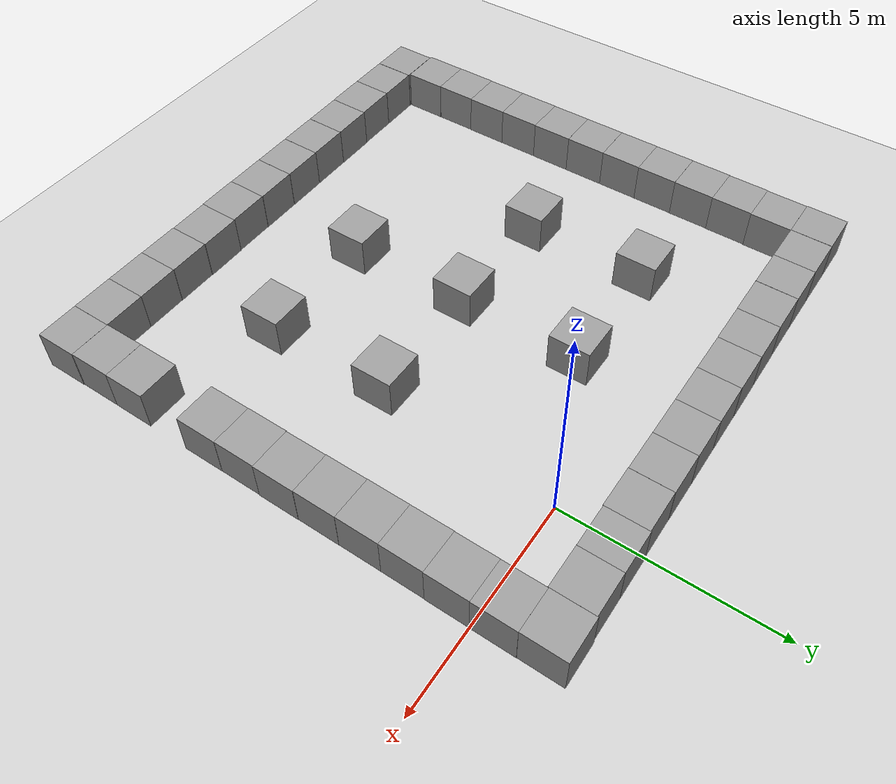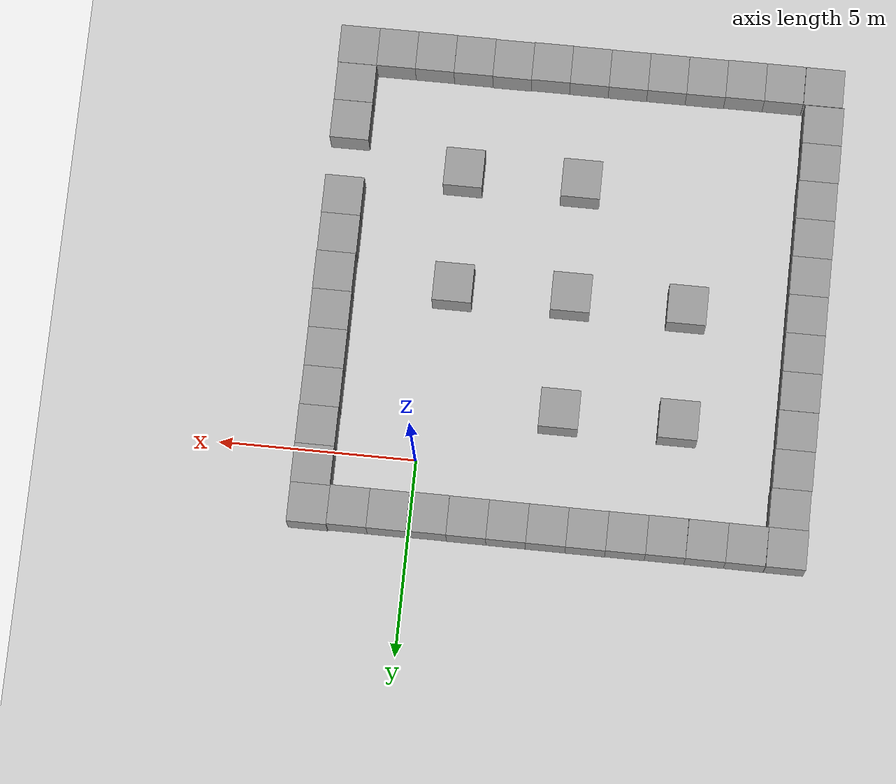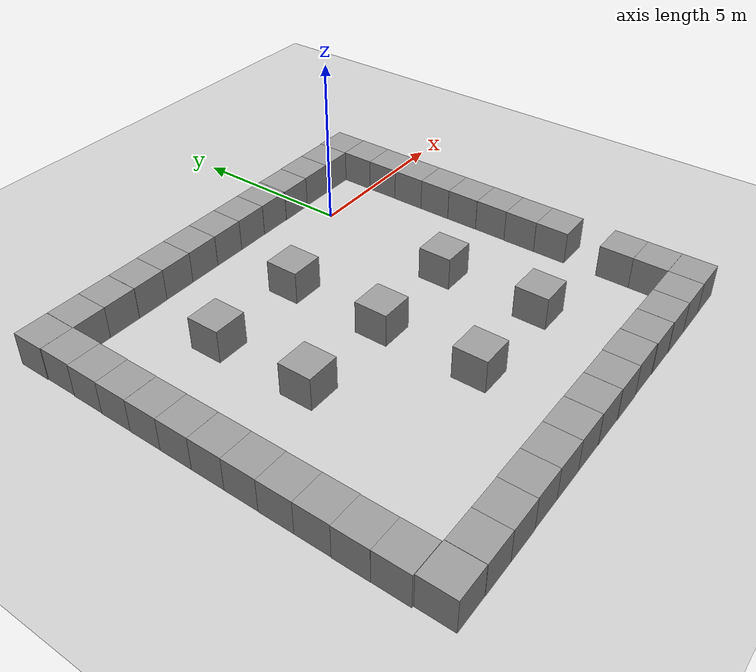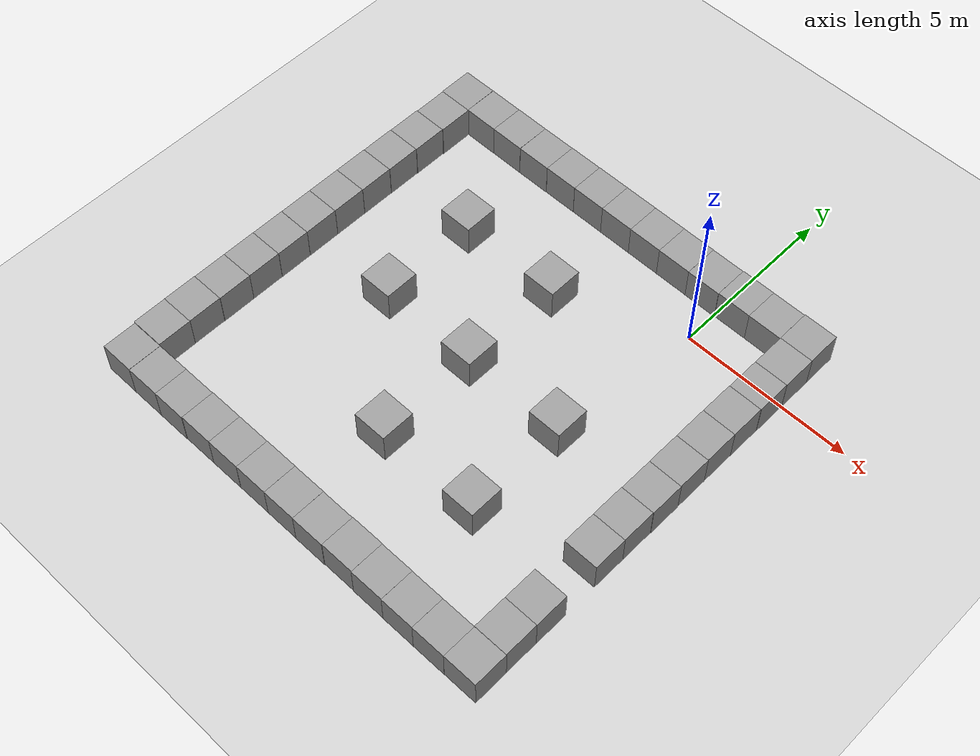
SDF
<sdf version="1.6">
 <world name="default">
  <light name="sun" type="directional">
   <pose>0 0 10 0 -0 0</pose>
   <diffuse>0.8 0.8 0.8 1</diffuse>
   <specular>0.1 0.1 0.1 1</specular>
   <attenuation>
    <range>1000</range>
    <constant>0.9</constant>
    <linear>0.01</linear>
    <quadratic>0.001</quadratic>
   </attenuation>
   <direction>-0.5 0.5 -1</direction>
  </light>
  <model name="ground_plane">
   <static>1</static>
   <link name="link">
    <collision name="collision">
     <geometry><plane><normal>0 0 1</normal><size>100 100</size></plane></geometry>
     <surface><friction><ode><mu>100</mu><mu2>50</mu2></ode></friction></surface>
    </collision>
    <visual name="visual">
     <cast_shadows>0</cast_shadows>
     <geometry><plane><normal>0 0 1</normal><size>100 100</size></plane></geometry>
     <material>
      <script><uri>file://media/materials/scripts/gazebo.material</uri><name>Gazebo/Grey</name></script>
     </material>
    </visual>
   </link>
  </model>
  <gravity>0 0 -9.8</gravity>
  <magnetic_field>6e-06 2.3e-05 -4.2e-05</magnetic_field>
  <atmosphere type="adiabatic"/>
  <physics name="default_physics" default="0" type="ode">
   <max_step_size>0.001</max_step_size>
   <real_time_factor>1</real_time_factor>
   <real_time_update_rate>1000</real_time_update_rate>
  </physics>
  <scene><ambient>0.4 0.4 0.4 1</ambient><background>0.7 0.7 0.7 1</background><shadows>1</shadows></scene>
  <spherical_coordinates>
   <surface_model>EARTH_WGS84</surface_model>
   <latitude_deg>0</latitude_deg>
   <longitude_deg>0</longitude_deg>
   <elevation>0</elevation>
   <heading_deg>0</heading_deg>
  </spherical_coordinates>
  <model name="unit_box_0_3">
   <pose>-0.485011 1.46415 0.5 0 0 -0.000431</pose>
   <link name="link">
    <inertial>
     <mass>1</mass>
     <inertia>
      <ixx>0.166667</ixx>
      <ixy>0</ixy>
      <ixz>0</ixz>
      <iyy>0.166667</iyy>
      <iyz>0</iyz>
      <izz>0.166667</izz>
     </inertia>
    </inertial>
    <collision name="collision"><geometry><box><size>1 1 1</size></box></geometry></collision>
    <visual name="visual">
     <geometry><box><size>1 1 1</size></box></geometry>
     <material>
      <script><name>Gazebo/Grey</name><uri>file://media/materials/scripts/gazebo.material</uri></script>
     </material>
    </visual>
   </link>
  </model>
  <model name="unit_box_0_4">
   <pose>0.515009 1.47742 0.5 0 0 -0.000418</pose>
   <link name="link">
    <inertial>
     <mass>1</mass>
     <inertia>
      <ixx>0.166667</ixx>
      <ixy>0</ixy>
      <ixz>0</ixz>
      <iyy>0.166667</iyy>
      <iyz>0</iyz>
      <izz>0.166667</izz>
     </inertia>
    </inertial>
    <collision name="collision"><geometry><box><size>1 1 1</size></box></geometry></collision>
    <visual name="visual">
     <geometry><box><size>1 1 1</size></box></geometry>
     <material>
      <script><name>Gazebo/Grey</name><uri>file://media/materials/scripts/gazebo.material</uri></script>
     </material>
    </visual>
   </link>
  </model>
  <model name="unit_box_0_5">
   <pose>1.51501 1.4753 0.5 0 0 -0.000419</pose>
   <link name="link">
    <inertial>
     <mass>1</mass>
     <inertia>
      <ixx>0.166667</ixx>
      <ixy>0</ixy>
      <ixz>0</ixz>
      <iyy>0.166667</iyy>
      <iyz>0</iyz>
      <izz>0.166667</izz>
     </inertia>
    </inertial>
    <collision name="collision"><geometry><box><size>1 1 1</size></box></geometry></collision>
    <visual name="visual">
     <geometry><box><size>1 1 1</size></box></geometry>
     <material>
      <script><name>Gazebo/Grey</name><uri>file://media/materials/scripts/gazebo.material</uri></script>
     </material>
    </visual>
   </link>
  </model>
  <model name="unit_box_0_6">
   <pose>-1.48541 1.46962 0.5 0 0 -0.001227</pose>
   <link name="link">
    <inertial>
     <mass>1</mass>
     <inertia>
      <ixx>0.166667</ixx>
      <ixy>0</ixy>
      <ixz>0</ixz>
      <iyy>0.166667</iyy>
      <iyz>0</iyz>
      <izz>0.166667</izz>
     </inertia>
    </inertial>
    <collision name="collision"><geometry><box><size>1 1 1</size></box></geometry></collision>
    <visual name="visual">
     <geometry><box><size>1 1 1</size></box></geometry>
     <material>
      <script><name>Gazebo/Grey</name><uri>file://media/materials/scripts/gazebo.material</uri></script>
     </material>
    </visual>
   </link>
  </model>
  <model name="unit_box_0_7">
   <pose>-2.48543 1.47308 0.5 0 0 -0.001272</pose>
   <link name="link">
    <inertial>
     <mass>1</mass>
     <inertia>
      <ixx>0.166667</ixx>
      <ixy>0</ixy>
      <ixz>0</ixz>
      <iyy>0.166667</iyy>
      <iyz>0</iyz>
      <izz>0.166667</izz>
     </inertia>
    </inertial>
    <collision name="collision"><geometry><box><size>1 1 1</size></box></geometry></collision>
    <visual name="visual">
     <geometry><box><size>1 1 1</size></box></geometry>
     <material>
      <script><name>Gazebo/Grey</name><uri>file://media/materials/scripts/gazebo.material</uri></script>
     </material>
    </visual>
   </link>
  </model>
  <model name="unit_box_0_8">
   <pose>2.51506 1.4973 0.5 0 0 -0.000355</pose>
   <link name="link">
    <inertial>
     <mass>1</mass>
     <inertia>
      <ixx>0.166667</ixx>
      <ixy>0</ixy>
      <ixz>0</ixz>
      <iyy>0.166667</iyy>
      <iyz>0</iyz>
      <izz>0.166667</izz>
     </inertia>
    </inertial>
    <collision name="collision"><geometry><box><size>1 1 1</size></box></geometry></collision>
    <visual name="visual">
     <geometry><box><size>1 1 1</size></box></geometry>
     <material>
      <script><name>Gazebo/Grey</name><uri>file://media/materials/scripts/gazebo.material</uri></script>
     </material>
    </visual>
   </link>
  </model>
  <model name="unit_box_0_9">
   <pose>-3.48544 1.47527 0.499995 -1e-05 -0 -0.001286</pose>
   <link name="link">
    <inertial>
     <mass>1</mass>
     <inertia>
      <ixx>0.166667</ixx>
      <ixy>0</ixy>
      <ixz>0</ixz>
      <iyy>0.166667</iyy>
      <iyz>0</iyz>
      <izz>0.166667</izz>
     </inertia>
    </inertial>
    <collision name="collision"><geometry><box><size>1 1 1</size></box></geometry></collision>
    <visual name="visual">
     <geometry><box><size>1 1 1</size></box></geometry>
     <material>
      <script><name>Gazebo/Grey</name><uri>file://media/materials/scripts/gazebo.material</uri></script>
     </material>
    </visual>
   </link>
  </model>
  <model name="unit_box_0_10">
   <pose>-4.48545 1.47865 0.5 0 0 -0.00131</pose>
   <link name="link">
    <inertial>
     <mass>1</mass>
     <inertia>
      <ixx>0.166667</ixx>
      <ixy>0</ixy>
      <ixz>0</ixz>
      <iyy>0.166667</iyy>
      <iyz>0</iyz>
      <izz>0.166667</izz>
     </inertia>
    </inertial>
    <collision name="collision"><geometry><box><size>1 1 1</size></box></geometry></collision>
    <visual name="visual">
     <geometry><box><size>1 1 1</size></box></geometry>
     <material>
      <script><name>Gazebo/Grey</name><uri>file://media/materials/scripts/gazebo.material</uri></script>
     </material>
    </visual>
   </link>
  </model>
  <model name="unit_box_0_11">
   <pose>-5.48546 1.4761 0.499995 -1e-05 -0 -0.001312</pose>
   <link name="link">
    <inertial>
     <mass>1</mass>
     <inertia>
      <ixx>0.166667</ixx>
      <ixy>0</ixy>
      <ixz>0</ixz>
      <iyy>0.166667</iyy>
      <iyz>0</iyz>
      <izz>0.166667</izz>
     </inertia>
    </inertial>
    <collision name="collision"><geometry><box><size>1 1 1</size></box></geometry></collision>
    <visual name="visual">
     <geometry><box><size>1 1 1</size></box></geometry>
     <material>
      <script><name>Gazebo/Grey</name><uri>file://media/materials/scripts/gazebo.material</uri></script>
     </material>
    </visual>
   </link>
  </model>
  <model name="unit_box_0_28">
   <pose>2.51082 -6.50287 0.5 0 0 -8.4e-05</pose>
   <link name="link">
    <inertial>
     <mass>1</mass>
     <inertia>
      <ixx>0.166667</ixx>
      <ixy>0</ixy>
      <ixz>0</ixz>
      <iyy>0.166667</iyy>
      <iyz>0</iyz>
      <izz>0.166667</izz>
     </inertia>
    </inertial>
    <collision name="collision"><geometry><box><size>1 1 1</size></box></geometry></collision>
    <visual name="visual">
     <geometry><box><size>1 1 1</size></box></geometry>
     <material>
      <script><name>Gazebo/Grey</name><uri>file://media/materials/scripts/gazebo.material</uri></script>
     </material>
    </visual>
   </link>
  </model>
  <model name="unit_box_0_29">
   <pose>2.50829 -5.50284 0.5 0 0 -0.000151</pose>
   <link name="link">
    <inertial>
     <mass>1</mass>
     <inertia>
      <ixx>0.166667</ixx>
      <ixy>0</ixy>
      <ixz>0</ixz>
      <iyy>0.166667</iyy>
      <iyz>0</iyz>
      <izz>0.166667</izz>
     </inertia>
    </inertial>
    <collision name="collision"><geometry><box><size>1 1 1</size></box></geometry></collision>
    <visual name="visual">
     <geometry><box><size>1 1 1</size></box></geometry>
     <material>
      <script><name>Gazebo/Grey</name><uri>file://media/materials/scripts/gazebo.material</uri></script>
     </material>
    </visual>
   </link>
  </model>
  <model name="unit_box_0_30">
   <pose>2.51749 -4.50282 0.5 0 0 -0.000178</pose>
   <link name="link">
    <inertial>
     <mass>1</mass>
     <inertia>
      <ixx>0.166667</ixx>
      <ixy>0</ixy>
      <ixz>0</ixz>
      <iyy>0.166667</iyy>
      <iyz>0</iyz>
      <izz>0.166667</izz>
     </inertia>
    </inertial>
    <collision name="collision"><geometry><box><size>1 1 1</size></box></geometry></collision>
    <visual name="visual">
     <geometry><box><size>1 1 1</size></box></geometry>
     <material>
      <script><name>Gazebo/Grey</name><uri>file://media/materials/scripts/gazebo.material</uri></script>
     </material>
    </visual>
   </link>
  </model>
  <model name="unit_box_0_31">
   <pose>2.51174 -3.50282 0.5 0 0 -0.000178</pose>
   <link name="link">
    <inertial>
     <mass>1</mass>
     <inertia>
      <ixx>0.166667</ixx>
      <ixy>0</ixy>
      <ixz>0</ixz>
      <iyy>0.166667</iyy>
      <iyz>0</iyz>
      <izz>0.166667</izz>
     </inertia>
    </inertial>
    <collision name="collision"><geometry><box><size>1 1 1</size></box></geometry></collision>
    <visual name="visual">
     <geometry><box><size>1 1 1</size></box></geometry>
     <material>
      <script><name>Gazebo/Grey</name><uri>file://media/materials/scripts/gazebo.material</uri></script>
     </material>
    </visual>
   </link>
  </model>
  <model name="unit_box_0_32">
   <pose>2.50817 -2.50281 0.5 0 0 -0.000178</pose>
   <link name="link">
    <inertial>
     <mass>1</mass>
     <inertia>
      <ixx>0.166667</ixx>
      <ixy>0</ixy>
      <ixz>0</ixz>
      <iyy>0.166667</iyy>
      <iyz>0</iyz>
      <izz>0.166667</izz>
     </inertia>
    </inertial>
    <collision name="collision"><geometry><box><size>1 1 1</size></box></geometry></collision>
    <visual name="visual">
     <geometry><box><size>1 1 1</size></box></geometry>
     <material>
      <script><name>Gazebo/Grey</name><uri>file://media/materials/scripts/gazebo.material</uri></script>
     </material>
    </visual>
   </link>
  </model>
  <model name="unit_box_0_34">
   <pose>2.50944 -1.5028 0.499995 -0 -1e-05 -0.000177</pose>
   <link name="link">
    <inertial>
     <mass>1</mass>
     <inertia>
      <ixx>0.166667</ixx>
      <ixy>0</ixy>
      <ixz>0</ixz>
      <iyy>0.166667</iyy>
      <iyz>0</iyz>
      <izz>0.166667</izz>
     </inertia>
    </inertial>
    <collision name="collision"><geometry><box><size>1 1 1</size></box></geometry></collision>
    <visual name="visual">
     <geometry><box><size>1 1 1</size></box></geometry>
     <material>
      <script><name>Gazebo/Grey</name><uri>file://media/materials/scripts/gazebo.material</uri></script>
     </material>
    </visual>
   </link>
  </model>
  <model name="unit_box_0_35">
   <pose>2.51729 -0.5028 0.5 0 0 -0.000177</pose>
   <link name="link">
    <inertial>
     <mass>1</mass>
     <inertia>
      <ixx>0.166667</ixx>
      <ixy>0</ixy>
      <ixz>0</ixz>
      <iyy>0.166667</iyy>
      <iyz>0</iyz>
      <izz>0.166667</izz>
     </inertia>
    </inertial>
    <collision name="collision"><geometry><box><size>1 1 1</size></box></geometry></collision>
    <visual name="visual">
     <geometry><box><size>1 1 1</size></box></geometry>
     <material>
      <script><name>Gazebo/Grey</name><uri>file://media/materials/scripts/gazebo.material</uri></script>
     </material>
    </visual>
   </link>
  </model>
  <model name="unit_box_0_36">
   <pose>2.52058 0.497211 0.5 0 0 -0.000195</pose>
   <link name="link">
    <inertial>
     <mass>1</mass>
     <inertia>
      <ixx>0.166667</ixx>
      <ixy>0</ixy>
      <ixz>0</ixz>
      <iyy>0.166667</iyy>
      <iyz>0</iyz>
      <izz>0.166667</izz>
     </inertia>
    </inertial>
    <collision name="collision"><geometry><box><size>1 1 1</size></box></geometry></collision>
    <visual name="visual">
     <geometry><box><size>1 1 1</size></box></geometry>
     <material>
      <script><name>Gazebo/Grey</name><uri>file://media/materials/scripts/gazebo.material</uri></script>
     </material>
    </visual>
   </link>
  </model>
  <model name="unit_box_1">
   <pose>-0.520415 -4.49984 0.5 0 -0 0</pose>
   <link name="link">
    <inertial>
     <mass>1</mass>
     <inertia>
      <ixx>0.166667</ixx>
      <ixy>0</ixy>
      <ixz>0</ixz>
      <iyy>0.166667</iyy>
      <iyz>0</iyz>
      <izz>0.166667</izz>
     </inertia>
    </inertial>
    <collision name="collision"><geometry><box><size>1 1 1</size></box></geometry></collision>
    <visual name="visual">
     <geometry><box><size>1 1 1</size></box></geometry>
     <material>
      <script><name>Gazebo/Grey</name><uri>file://media/materials/scripts/gazebo.material</uri></script>
     </material>
    </visual>
   </link>
  </model>
  <model name="unit_box_2">
   <pose>-0.495693 -7.52249 0.5 0 -0 0.000151</pose>
   <link name="link">
    <inertial>
     <mass>1</mass>
     <inertia>
      <ixx>0.166667</ixx>
      <ixy>0</ixy>
      <ixz>0</ixz>
      <iyy>0.166667</iyy>
      <iyz>0</iyz>
      <izz>0.166667</izz>
     </inertia>
    </inertial>
    <collision name="collision"><geometry><box><size>1 1 1</size></box></geometry></collision>
    <visual name="visual">
     <geometry><box><size>1 1 1</size></box></geometry>
     <material>
      <script><name>Gazebo/Grey</name><uri>file://media/materials/scripts/gazebo.material</uri></script>
     </material>
    </visual>
   </link>
  </model>
  <model name="unit_box_4">
   <pose>-1.47392 -10.5015 0.5 0 -0 0.003189</pose>
   <link name="link">
    <inertial>
     <mass>1</mass>
     <inertia>
      <ixx>0.166667</ixx>
      <ixy>0</ixy>
      <ixz>0</ixz>
      <iyy>0.166667</iyy>
      <iyz>0</iyz>
      <izz>0.166667</izz>
     </inertia>
    </inertial>
    <collision name="collision"><geometry><box><size>1 1 1</size></box></geometry></collision>
    <visual name="visual">
     <geometry><box><size>1 1 1</size></box></geometry>
     <material>
      <script><name>Gazebo/Grey</name><uri>file://media/materials/scripts/gazebo.material</uri></script>
     </material>
    </visual>
   </link>
  </model>
  <model name="unit_box_5_0">
   <pose>-0.473783 -10.5096 0.5 0 -0 0.003101</pose>
   <link name="link">
    <inertial>
     <mass>1</mass>
     <inertia>
      <ixx>0.166667</ixx>
      <ixy>0</ixy>
      <ixz>0</ixz>
      <iyy>0.166667</iyy>
      <iyz>0</iyz>
      <izz>0.166667</izz>
     </inertia>
    </inertial>
    <collision name="collision"><geometry><box><size>1 1 1</size></box></geometry></collision>
    <visual name="visual">
     <geometry><box><size>1 1 1</size></box></geometry>
     <material>
      <script><name>Gazebo/Grey</name><uri>file://media/materials/scripts/gazebo.material</uri></script>
     </material>
    </visual>
   </link>
  </model>
  <model name="unit_box_5_1">
   <pose>0.526456 -10.5137 0.5 0 -0 0.003181</pose>
   <link name="link">
    <inertial>
     <mass>1</mass>
     <inertia>
      <ixx>0.166667</ixx>
      <ixy>0</ixy>
      <ixz>0</ixz>
      <iyy>0.166667</iyy>
      <iyz>0</iyz>
      <izz>0.166667</izz>
     </inertia>
    </inertial>
    <collision name="collision"><geometry><box><size>1 1 1</size></box></geometry></collision>
    <visual name="visual">
     <geometry><box><size>1 1 1</size></box></geometry>
     <material>
      <script><name>Gazebo/Grey</name><uri>file://media/materials/scripts/gazebo.material</uri></script>
     </material>
    </visual>
   </link>
  </model>
  <model name="unit_box_5_2">
   <pose>1.52651 -10.5118 0.5 0 -0 0.003169</pose>
   <link name="link">
    <inertial>
     <mass>1</mass>
     <inertia>
      <ixx>0.166667</ixx>
      <ixy>0</ixy>
      <ixz>0</ixz>
      <iyy>0.166667</iyy>
      <iyz>0</iyz>
      <izz>0.166667</izz>
     </inertia>
    </inertial>
    <collision name="collision"><geometry><box><size>1 1 1</size></box></geometry></collision>
    <visual name="visual">
     <geometry><box><size>1 1 1</size></box></geometry>
     <material>
      <script><name>Gazebo/Grey</name><uri>file://media/materials/scripts/gazebo.material</uri></script>
     </material>
    </visual>
   </link>
  </model>
  <model name="unit_box_5_3">
   <pose>2.51399 -8.50357 0.5 0 -0 0.001292</pose>
   <link name="link">
    <inertial>
     <mass>1</mass>
     <inertia>
      <ixx>0.166667</ixx>
      <ixy>0</ixy>
      <ixz>0</ixz>
      <iyy>0.166667</iyy>
      <iyz>0</iyz>
      <izz>0.166667</izz>
     </inertia>
    </inertial>
    <collision name="collision"><geometry><box><size>1 1 1</size></box></geometry></collision>
    <visual name="visual">
     <geometry><box><size>1 1 1</size></box></geometry>
     <material>
      <script><name>Gazebo/Grey</name><uri>file://media/materials/scripts/gazebo.material</uri></script>
     </material>
    </visual>
   </link>
  </model>
  <model name="unit_box_5_4">
   <pose>-2.47388 -10.5161 0.5 0 -0 0.003189</pose>
   <link name="link">
    <inertial>
     <mass>1</mass>
     <inertia>
      <ixx>0.166667</ixx>
      <ixy>0</ixy>
      <ixz>0</ixz>
      <iyy>0.166667</iyy>
      <iyz>0</iyz>
      <izz>0.166667</izz>
     </inertia>
    </inertial>
    <collision name="collision"><geometry><box><size>1 1 1</size></box></geometry></collision>
    <visual name="visual">
     <geometry><box><size>1 1 1</size></box></geometry>
     <material>
      <script><name>Gazebo/Grey</name><uri>file://media/materials/scripts/gazebo.material</uri></script>
     </material>
    </visual>
   </link>
  </model>
  <model name="unit_box_5_5">
   <pose>2.51461 -9.50427 0.5 0 -0 0.002692</pose>
   <link name="link">
    <inertial>
     <mass>1</mass>
     <inertia>
      <ixx>0.166667</ixx>
      <ixy>0</ixy>
      <ixz>0</ixz>
      <iyy>0.166667</iyy>
      <iyz>0</iyz>
      <izz>0.166667</izz>
     </inertia>
    </inertial>
    <collision name="collision"><geometry><box><size>1 1 1</size></box></geometry></collision>
    <visual name="visual">
     <geometry><box><size>1 1 1</size></box></geometry>
     <material>
      <script><name>Gazebo/Grey</name><uri>file://media/materials/scripts/gazebo.material</uri></script>
     </material>
    </visual>
   </link>
  </model>
  <model name="unit_box_5_6">
   <pose>2.52663 -10.5055 0.5 0 -0 0.003363</pose>
   <link name="link">
    <inertial>
     <mass>1</mass>
     <inertia>
      <ixx>0.166667</ixx>
      <ixy>0</ixy>
      <ixz>0</ixz>
      <iyy>0.166667</iyy>
      <iyz>0</iyz>
      <izz>0.166667</izz>
     </inertia>
    </inertial>
    <collision name="collision"><geometry><box><size>1 1 1</size></box></geometry></collision>
    <visual name="visual">
     <geometry><box><size>1 1 1</size></box></geometry>
     <material>
      <script><name>Gazebo/Grey</name><uri>file://media/materials/scripts/gazebo.material</uri></script>
     </material>
    </visual>
   </link>
  </model>
  <model name="unit_box_5_7">
   <pose>-6.48558 1.47192 0.5 0 0 -0.001453</pose>
   <link name="link">
    <inertial>
     <mass>1</mass>
     <inertia>
      <ixx>0.166667</ixx>
      <ixy>0</ixy>
      <ixz>0</ixz>
      <iyy>0.166667</iyy>
      <iyz>0</iyz>
      <izz>0.166667</izz>
     </inertia>
    </inertial>
    <collision name="collision"><geometry><box><size>1 1 1</size></box></geometry></collision>
    <visual name="visual">
     <geometry><box><size>1 1 1</size></box></geometry>
     <material>
      <script><name>Gazebo/Grey</name><uri>file://media/materials/scripts/gazebo.material</uri></script>
     </material>
    </visual>
   </link>
  </model>
  <model name="unit_box_5_8">
   <pose>-7.48807 1.47601 0.5 0 0 -0.006394</pose>
   <link name="link">
    <inertial>
     <mass>1</mass>
     <inertia>
      <ixx>0.166667</ixx>
      <ixy>0</ixy>
      <ixz>0</ixz>
      <iyy>0.166667</iyy>
      <iyz>0</iyz>
      <izz>0.166667</izz>
     </inertia>
    </inertial>
    <collision name="collision"><geometry><box><size>1 1 1</size></box></geometry></collision>
    <visual name="visual">
     <geometry><box><size>1 1 1</size></box></geometry>
     <material>
      <script><name>Gazebo/Grey</name><uri>file://media/materials/scripts/gazebo.material</uri></script>
     </material>
    </visual>
   </link>
  </model>
  <model name="unit_box_5_9">
   <pose>-8.48807 1.48039 0.5 0 0 -0.006392</pose>
   <link name="link">
    <inertial>
     <mass>1</mass>
     <inertia>
      <ixx>0.166667</ixx>
      <ixy>0</ixy>
      <ixz>0</ixz>
      <iyy>0.166667</iyy>
      <iyz>0</iyz>
      <izz>0.166667</izz>
     </inertia>
    </inertial>
    <collision name="collision"><geometry><box><size>1 1 1</size></box></geometry></collision>
    <visual name="visual">
     <geometry><box><size>1 1 1</size></box></geometry>
     <material>
      <script><name>Gazebo/Grey</name><uri>file://media/materials/scripts/gazebo.material</uri></script>
     </material>
    </visual>
   </link>
  </model>
  <model name="unit_box_5_10">
   <pose>-9.49113 1.48362 0.5 0 0 -0.00029</pose>
   <link name="link">
    <inertial>
     <mass>1</mass>
     <inertia>
      <ixx>0.166667</ixx>
      <ixy>0</ixy>
      <ixz>0</ixz>
      <iyy>0.166667</iyy>
      <iyz>0</iyz>
      <izz>0.166667</izz>
     </inertia>
    </inertial>
    <collision name="collision"><geometry><box><size>1 1 1</size></box></geometry></collision>
    <visual name="visual">
     <geometry><box><size>1 1 1</size></box></geometry>
     <material>
      <script><name>Gazebo/Grey</name><uri>file://media/materials/scripts/gazebo.material</uri></script>
     </material>
    </visual>
   </link>
  </model>
  <model name="unit_box_5_11">
   <pose>-3.47406 -10.5125 0.5 0 -0 0.0031</pose>
   <link name="link">
    <inertial>
     <mass>1</mass>
     <inertia>
      <ixx>0.166667</ixx>
      <ixy>0</ixy>
      <ixz>0</ixz>
      <iyy>0.166667</iyy>
      <iyz>0</iyz>
      <izz>0.166667</izz>
     </inertia>
    </inertial>
    <collision name="collision"><geometry><box><size>1 1 1</size></box></geometry></collision>
    <visual name="visual">
     <geometry><box><size>1 1 1</size></box></geometry>
     <material>
      <script><name>Gazebo/Grey</name><uri>file://media/materials/scripts/gazebo.material</uri></script>
     </material>
    </visual>
   </link>
  </model>
  <model name="unit_box_5_12">
   <pose>-4.47461 -10.5113 0.5 0 -0 0.002137</pose>
   <link name="link">
    <inertial>
     <mass>1</mass>
     <inertia>
      <ixx>0.166667</ixx>
      <ixy>0</ixy>
      <ixz>0</ixz>
      <iyy>0.166667</iyy>
      <iyz>0</iyz>
      <izz>0.166667</izz>
     </inertia>
    </inertial>
    <collision name="collision"><geometry><box><size>1 1 1</size></box></geometry></collision>
    <visual name="visual">
     <geometry><box><size>1 1 1</size></box></geometry>
     <material>
      <script><name>Gazebo/Grey</name><uri>file://media/materials/scripts/gazebo.material</uri></script>
     </material>
    </visual>
   </link>
  </model>
  <model name="unit_box_5_13">
   <pose>-5.4749 -10.5159 0.5 0 -0 0.001541</pose>
   <link name="link">
    <inertial>
     <mass>1</mass>
     <inertia>
      <ixx>0.166667</ixx>
      <ixy>0</ixy>
      <ixz>0</ixz>
      <iyy>0.166667</iyy>
      <iyz>0</iyz>
      <izz>0.166667</izz>
     </inertia>
    </inertial>
    <collision name="collision"><geometry><box><size>1 1 1</size></box></geometry></collision>
    <visual name="visual">
     <geometry><box><size>1 1 1</size></box></geometry>
     <material>
      <script><name>Gazebo/Grey</name><uri>file://media/materials/scripts/gazebo.material</uri></script>
     </material>
    </visual>
   </link>
  </model>
  <model name="unit_box_5_14">
   <pose>-6.47495 -10.5167 0.5 0 -0 0.00147</pose>
   <link name="link">
    <inertial>
     <mass>1</mass>
     <inertia>
      <ixx>0.166667</ixx>
      <ixy>0</ixy>
      <ixz>0</ixz>
      <iyy>0.166667</iyy>
      <iyz>0</iyz>
      <izz>0.166667</izz>
     </inertia>
    </inertial>
    <collision name="collision"><geometry><box><size>1 1 1</size></box></geometry></collision>
    <visual name="visual">
     <geometry><box><size>1 1 1</size></box></geometry>
     <material>
      <script><name>Gazebo/Grey</name><uri>file://media/materials/scripts/gazebo.material</uri></script>
     </material>
    </visual>
   </link>
  </model>
  <model name="unit_box_5_15">
   <pose>-7.47495 -10.5285 0.5 0 -0 0.001472</pose>
   <link name="link">
    <inertial>
     <mass>1</mass>
     <inertia>
      <ixx>0.166667</ixx>
      <ixy>0</ixy>
      <ixz>0</ixz>
      <iyy>0.166667</iyy>
      <iyz>0</iyz>
      <izz>0.166667</izz>
     </inertia>
    </inertial>
    <collision name="collision"><geometry><box><size>1 1 1</size></box></geometry></collision>
    <visual name="visual">
     <geometry><box><size>1 1 1</size></box></geometry>
     <material>
      <script><name>Gazebo/Grey</name><uri>file://media/materials/scripts/gazebo.material</uri></script>
     </material>
    </visual>
   </link>
  </model>
  <model name="unit_box_5_16">
   <pose>-8.47495 -10.5288 0.5 0 -0 0.001471</pose>
   <link name="link">
    <inertial>
     <mass>1</mass>
     <inertia>
      <ixx>0.166667</ixx>
      <ixy>0</ixy>
      <ixz>0</ixz>
      <iyy>0.166667</iyy>
      <iyz>0</iyz>
      <izz>0.166667</izz>
     </inertia>
    </inertial>
    <collision name="collision"><geometry><box><size>1 1 1</size></box></geometry></collision>
    <visual name="visual">
     <geometry><box><size>1 1 1</size></box></geometry>
     <material>
      <script><name>Gazebo/Grey</name><uri>file://media/materials/scripts/gazebo.material</uri></script>
     </material>
    </visual>
   </link>
  </model>
  <model name="unit_box_5_17">
   <pose>-9.47979 -10.5268 0.5 0 -0 0</pose>
   <link name="link">
    <inertial>
     <mass>1</mass>
     <inertia>
      <ixx>0.166667</ixx>
      <ixy>0</ixy>
      <ixz>0</ixz>
      <iyy>0.166667</iyy>
      <iyz>0</iyz>
      <izz>0.166667</izz>
     </inertia>
    </inertial>
    <collision name="collision"><geometry><box><size>1 1 1</size></box></geometry></collision>
    <visual name="visual">
     <geometry><box><size>1 1 1</size></box></geometry>
     <material>
      <script><name>Gazebo/Grey</name><uri>file://media/materials/scripts/gazebo.material</uri></script>
     </material>
    </visual>
   </link>
  </model>
  <model name="unit_box_5_18">
   <pose>-9.52678 -9.51802 0.5 0 0 -0.000363</pose>
   <link name="link">
    <inertial>
     <mass>1</mass>
     <inertia>
      <ixx>0.166667</ixx>
      <ixy>0</ixy>
      <ixz>0</ixz>
      <iyy>0.166667</iyy>
      <iyz>0</iyz>
      <izz>0.166667</izz>
     </inertia>
    </inertial>
    <collision name="collision"><geometry><box><size>1 1 1</size></box></geometry></collision>
    <visual name="visual">
     <geometry><box><size>1 1 1</size></box></geometry>
     <material>
      <script><name>Gazebo/Grey</name><uri>file://media/materials/scripts/gazebo.material</uri></script>
     </material>
    </visual>
   </link>
  </model>
  <model name="unit_box_5_19">
   <pose>-9.53051 -8.51801 0.499995 9e-06 -0 -0.000363</pose>
   <link name="link">
    <inertial>
     <mass>1</mass>
     <inertia>
      <ixx>0.166667</ixx>
      <ixy>0</ixy>
      <ixz>0</ixz>
      <iyy>0.166667</iyy>
      <iyz>0</iyz>
      <izz>0.166667</izz>
     </inertia>
    </inertial>
    <collision name="collision"><geometry><box><size>1 1 1</size></box></geometry></collision>
    <visual name="visual">
     <geometry><box><size>1 1 1</size></box></geometry>
     <material>
      <script><name>Gazebo/Grey</name><uri>file://media/materials/scripts/gazebo.material</uri></script>
     </material>
    </visual>
   </link>
  </model>
  <model name="unit_box_5_20">
   <pose>-9.52037 -7.51801 0.5 0 0 -0.000364</pose>
   <link name="link">
    <inertial>
     <mass>1</mass>
     <inertia>
      <ixx>0.166667</ixx>
      <ixy>0</ixy>
      <ixz>0</ixz>
      <iyy>0.166667</iyy>
      <iyz>0</iyz>
      <izz>0.166667</izz>
     </inertia>
    </inertial>
    <collision name="collision"><geometry><box><size>1 1 1</size></box></geometry></collision>
    <visual name="visual">
     <geometry><box><size>1 1 1</size></box></geometry>
     <material>
      <script><name>Gazebo/Grey</name><uri>file://media/materials/scripts/gazebo.material</uri></script>
     </material>
    </visual>
   </link>
  </model>
  <model name="unit_box_5_21">
   <pose>-9.52082 -6.518 0.5 0 0 -0.000369</pose>
   <link name="link">
    <inertial>
     <mass>1</mass>
     <inertia>
      <ixx>0.166667</ixx>
      <ixy>0</ixy>
      <ixz>0</ixz>
      <iyy>0.166667</iyy>
      <iyz>0</iyz>
      <izz>0.166667</izz>
     </inertia>
    </inertial>
    <collision name="collision"><geometry><box><size>1 1 1</size></box></geometry></collision>
    <visual name="visual">
     <geometry><box><size>1 1 1</size></box></geometry>
     <material>
      <script><name>Gazebo/Grey</name><uri>file://media/materials/scripts/gazebo.material</uri></script>
     </material>
    </visual>
   </link>
  </model>
  <model name="unit_box_5_22">
   <pose>-9.51495 -5.51799 0.5 0 0 -0.000376</pose>
   <link name="link">
    <inertial>
     <mass>1</mass>
     <inertia>
      <ixx>0.166667</ixx>
      <ixy>0</ixy>
      <ixz>0</ixz>
      <iyy>0.166667</iyy>
      <iyz>0</iyz>
      <izz>0.166667</izz>
     </inertia>
    </inertial>
    <collision name="collision"><geometry><box><size>1 1 1</size></box></geometry></collision>
    <visual name="visual">
     <geometry><box><size>1 1 1</size></box></geometry>
     <material>
      <script><name>Gazebo/Grey</name><uri>file://media/materials/scripts/gazebo.material</uri></script>
     </material>
    </visual>
   </link>
  </model>
  <model name="unit_box_5_23">
   <pose>-9.5121 -4.51793 0.5 0 0 -0.000358</pose>
   <link name="link">
    <inertial>
     <mass>1</mass>
     <inertia>
      <ixx>0.166667</ixx>
      <ixy>0</ixy>
      <ixz>0</ixz>
      <iyy>0.166667</iyy>
      <iyz>0</iyz>
      <izz>0.166667</izz>
     </inertia>
    </inertial>
    <collision name="collision"><geometry><box><size>1 1 1</size></box></geometry></collision>
    <visual name="visual">
     <geometry><box><size>1 1 1</size></box></geometry>
     <material>
      <script><name>Gazebo/Grey</name><uri>file://media/materials/scripts/gazebo.material</uri></script>
     </material>
    </visual>
   </link>
  </model>
  <model name="unit_box_5_24">
   <pose>-9.51117 -3.51754 0.5 0 -0 0.000409</pose>
   <link name="link">
    <inertial>
     <mass>1</mass>
     <inertia>
      <ixx>0.166667</ixx>
      <ixy>0</ixy>
      <ixz>0</ixz>
      <iyy>0.166667</iyy>
      <iyz>0</iyz>
      <izz>0.166667</izz>
     </inertia>
    </inertial>
    <collision name="collision"><geometry><box><size>1 1 1</size></box></geometry></collision>
    <visual name="visual">
     <geometry><box><size>1 1 1</size></box></geometry>
     <material>
      <script><name>Gazebo/Grey</name><uri>file://media/materials/scripts/gazebo.material</uri></script>
     </material>
    </visual>
   </link>
  </model>
  <model name="unit_box_5_25">
   <pose>-9.50814 -2.51754 0.5 0 -0 0.000409</pose>
   <link name="link">
    <inertial>
     <mass>1</mass>
     <inertia>
      <ixx>0.166667</ixx>
      <ixy>0</ixy>
      <ixz>0</ixz>
      <iyy>0.166667</iyy>
      <iyz>0</iyz>
      <izz>0.166667</izz>
     </inertia>
    </inertial>
    <collision name="collision"><geometry><box><size>1 1 1</size></box></geometry></collision>
    <visual name="visual">
     <geometry><box><size>1 1 1</size></box></geometry>
     <material>
      <script><name>Gazebo/Grey</name><uri>file://media/materials/scripts/gazebo.material</uri></script>
     </material>
    </visual>
   </link>
  </model>
  <model name="unit_box_5_26">
   <pose>-9.50202 -1.51679 0.5 0 -0 0.000481</pose>
   <link name="link">
    <inertial>
     <mass>1</mass>
     <inertia>
      <ixx>0.166667</ixx>
      <ixy>0</ixy>
      <ixz>0</ixz>
      <iyy>0.166667</iyy>
      <iyz>0</iyz>
      <izz>0.166667</izz>
     </inertia>
    </inertial>
    <collision name="collision"><geometry><box><size>1 1 1</size></box></geometry></collision>
    <visual name="visual">
     <geometry><box><size>1 1 1</size></box></geometry>
     <material>
      <script><name>Gazebo/Grey</name><uri>file://media/materials/scripts/gazebo.material</uri></script>
     </material>
    </visual>
   </link>
  </model>
  <model name="unit_box_5_27">
   <pose>-9.49201 -0.516771 0.5 0 -0 0.000471</pose>
   <link name="link">
    <inertial>
     <mass>1</mass>
     <inertia>
      <ixx>0.166667</ixx>
      <ixy>0</ixy>
      <ixz>0</ixz>
      <iyy>0.166667</iyy>
      <iyz>0</iyz>
      <izz>0.166667</izz>
     </inertia>
    </inertial>
    <collision name="collision"><geometry><box><size>1 1 1</size></box></geometry></collision>
    <visual name="visual">
     <geometry><box><size>1 1 1</size></box></geometry>
     <material>
      <script><name>Gazebo/Grey</name><uri>file://media/materials/scripts/gazebo.material</uri></script>
     </material>
    </visual>
   </link>
  </model>
  <model name="unit_box_5_28">
   <pose>-9.47584 0.483342 0.5 0 -0 0.000261</pose>
   <link name="link">
    <inertial>
     <mass>1</mass>
     <inertia>
      <ixx>0.166667</ixx>
      <ixy>0</ixy>
      <ixz>0</ixz>
      <iyy>0.166667</iyy>
      <iyz>0</iyz>
      <izz>0.166667</izz>
     </inertia>
    </inertial>
    <collision name="collision"><geometry><box><size>1 1 1</size></box></geometry></collision>
    <visual name="visual">
     <geometry><box><size>1 1 1</size></box></geometry>
     <material>
      <script><name>Gazebo/Grey</name><uri>file://media/materials/scripts/gazebo.material</uri></script>
     </material>
    </visual>
   </link>
  </model>
  <model name="unit_box_5_29">
   <pose>-3.50909 -1.51524 0.5 0 -0 0</pose>
   <link name="link">
    <inertial>
     <mass>1</mass>
     <inertia>
      <ixx>0.166667</ixx>
      <ixy>0</ixy>
      <ixz>0</ixz>
      <iyy>0.166667</iyy>
      <iyz>0</iyz>
      <izz>0.166667</izz>
     </inertia>
    </inertial>
    <collision name="collision"><geometry><box><size>1 1 1</size></box></geometry></collision>
    <visual name="visual">
     <geometry><box><size>1 1 1</size></box></geometry>
     <material>
      <script><name>Gazebo/Grey</name><uri>file://media/materials/scripts/gazebo.material</uri></script>
     </material>
    </visual>
   </link>
  </model>
  <model name="unit_box_5_30">
   <pose>-6.52072 -1.5247 0.5 0 -0 0</pose>
   <link name="link">
    <inertial>
     <mass>1</mass>
     <inertia>
      <ixx>0.166667</ixx>
      <ixy>0</ixy>
      <ixz>0</ixz>
      <iyy>0.166667</iyy>
      <iyz>0</iyz>
      <izz>0.166667</izz>
     </inertia>
    </inertial>
    <collision name="collision"><geometry><box><size>1 1 1</size></box></geometry></collision>
    <visual name="visual">
     <geometry><box><size>1 1 1</size></box></geometry>
     <material>
      <script><name>Gazebo/Grey</name><uri>file://media/materials/scripts/gazebo.material</uri></script>
     </material>
    </visual>
   </link>
  </model>
  <model name="unit_box_5_31">
   <pose>-3.52551 -4.53468 0.5 0 -0 0</pose>
   <link name="link">
    <inertial>
     <mass>1</mass>
     <inertia>
      <ixx>0.166667</ixx>
      <ixy>0</ixy>
      <ixz>0</ixz>
      <iyy>0.166667</iyy>
      <iyz>0</iyz>
      <izz>0.166667</izz>
     </inertia>
    </inertial>
    <collision name="collision"><geometry><box><size>1 1 1</size></box></geometry></collision>
    <visual name="visual">
     <geometry><box><size>1 1 1</size></box></geometry>
     <material>
      <script><name>Gazebo/Grey</name><uri>file://media/materials/scripts/gazebo.material</uri></script>
     </material>
    </visual>
   </link>
  </model>
  <model name="unit_box_5_32">
   <pose>-3.50985 -7.51864 0.5 0 -0 0</pose>
   <link name="link">
    <inertial>
     <mass>1</mass>
     <inertia>
      <ixx>0.166667</ixx>
      <ixy>0</ixy>
      <ixz>0</ixz>
      <iyy>0.166667</iyy>
      <iyz>0</iyz>
      <izz>0.166667</izz>
     </inertia>
    </inertial>
    <collision name="collision"><geometry><box><size>1 1 1</size></box></geometry></collision>
    <visual name="visual">
     <geometry><box><size>1 1 1</size></box></geometry>
     <material>
      <script><name>Gazebo/Grey</name><uri>file://media/materials/scripts/gazebo.material</uri></script>
     </material>
    </visual>
   </link>
  </model>
  <model name="unit_box_5_33">
   <pose>-6.48333 -4.4908 0.5 0 -0 0</pose>
   <link name="link">
    <inertial>
     <mass>1</mass>
     <inertia>
      <ixx>0.166667</ixx>
      <ixy>0</ixy>
      <ixz>0</ixz>
      <iyy>0.166667</iyy>
      <iyz>0</iyz>
      <izz>0.166667</izz>
     </inertia>
    </inertial>
    <collision name="collision"><geometry><box><size>1 1 1</size></box></geometry></collision>
    <visual name="visual">
     <geometry><box><size>1 1 1</size></box></geometry>
     <material>
      <script><name>Gazebo/Grey</name><uri>file://media/materials/scripts/gazebo.material</uri></script>
     </material>
    </visual>
   </link>
  </model>
 </world>
</sdf>
